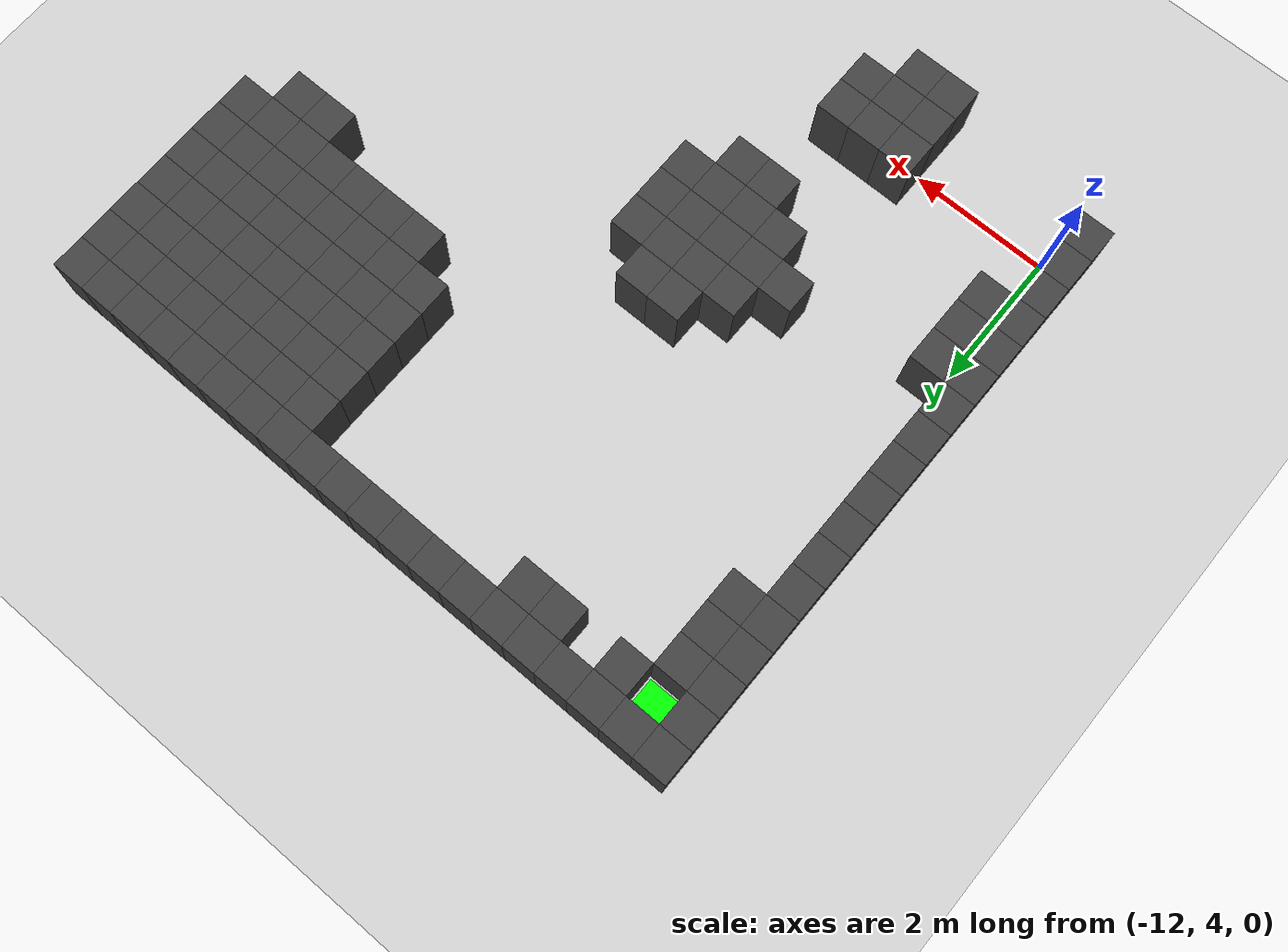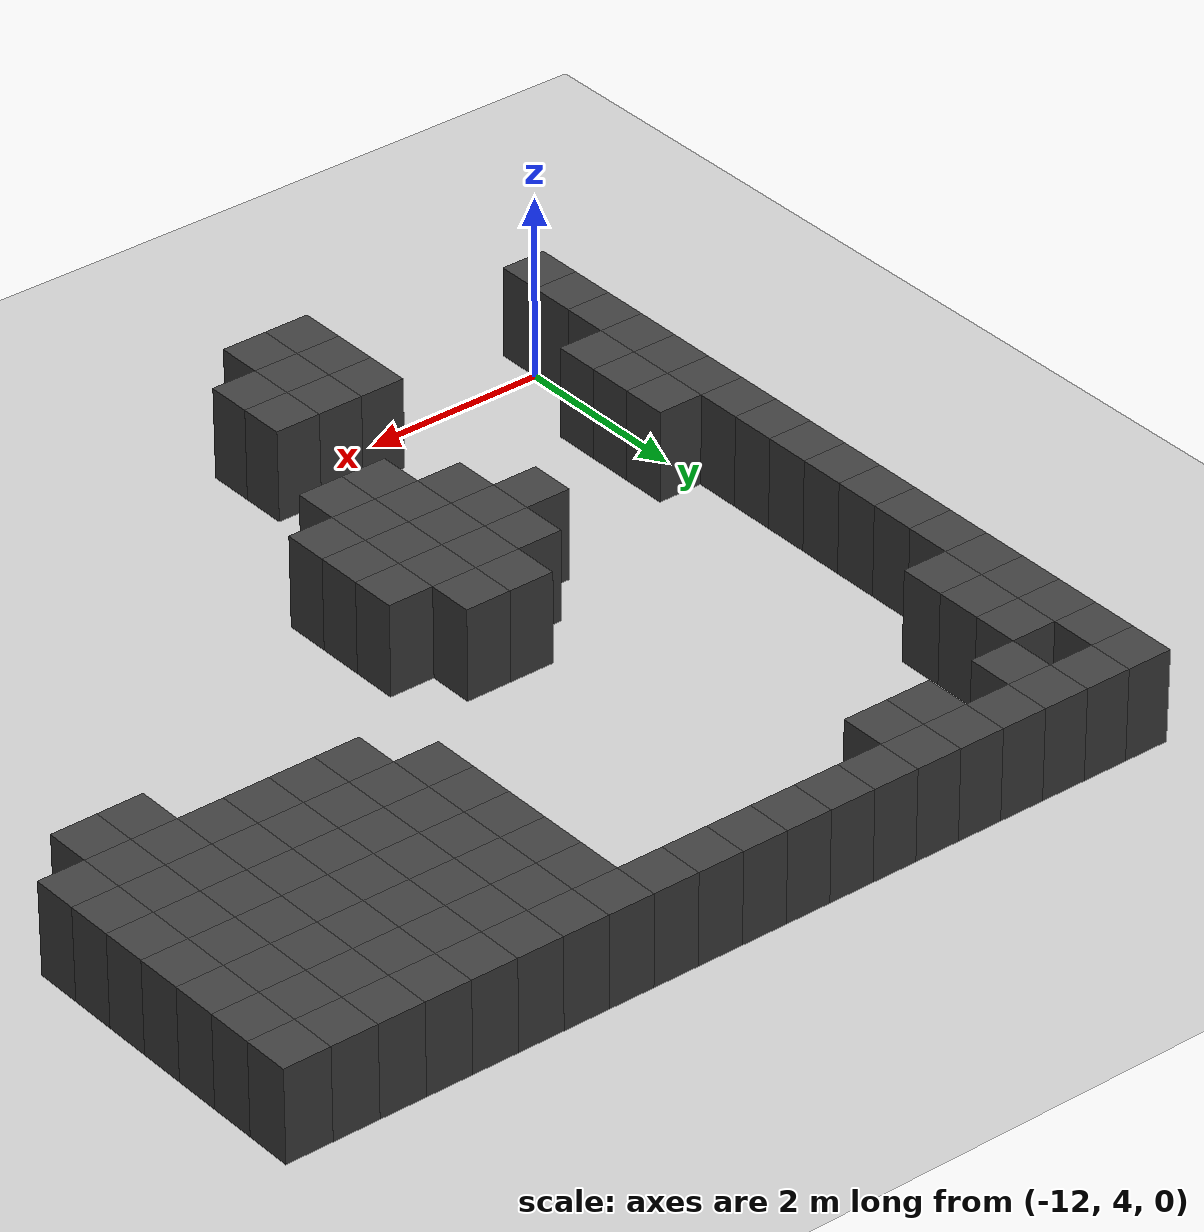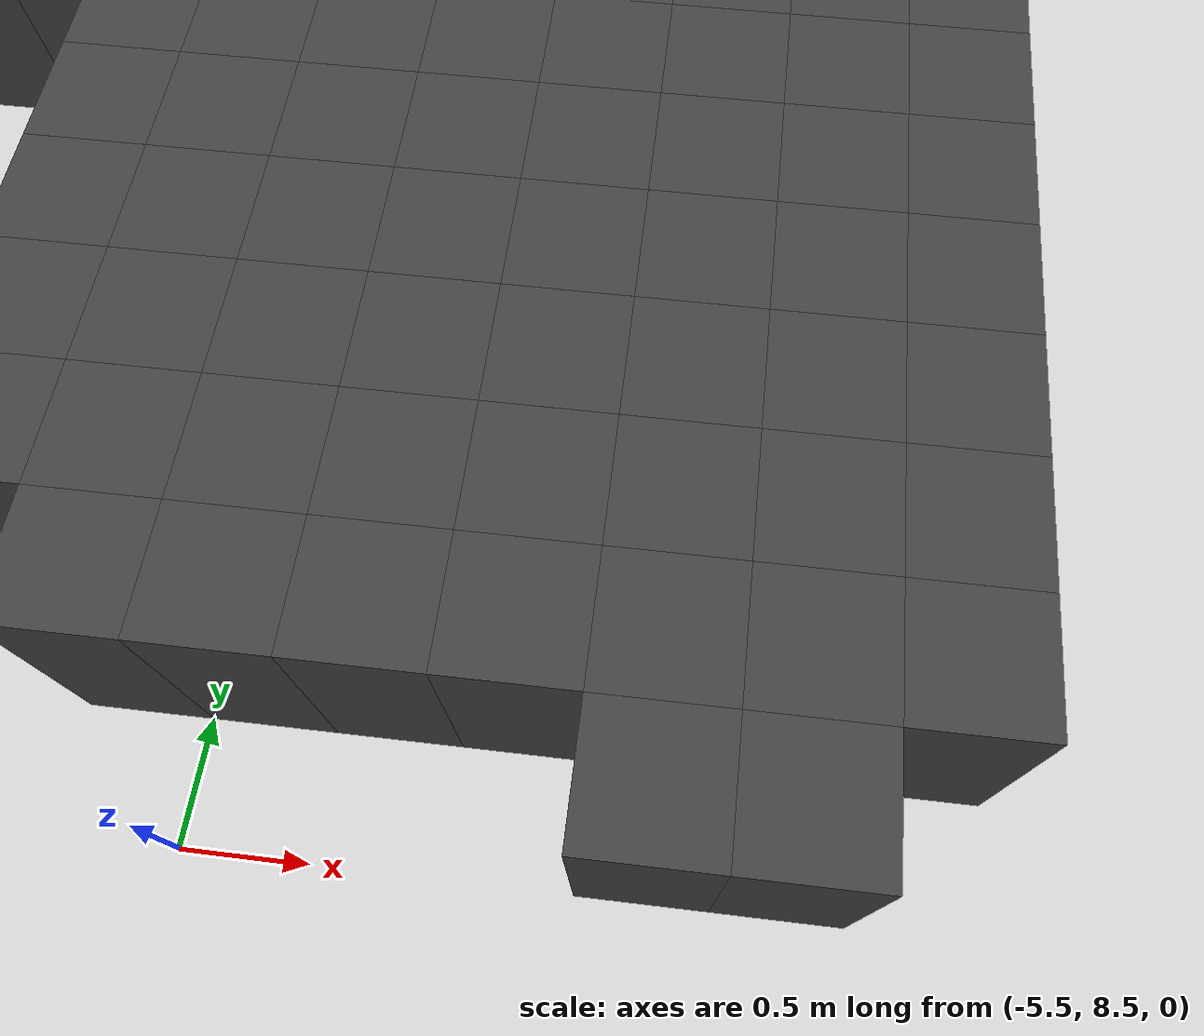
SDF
<sdf version="1.7">
 <world name="map_9381">
  <model name="ground_plane">
   <static>true</static>
   <link name="link">
    <collision name="collision">
     <geometry><plane><normal>0 0 1</normal><size>200 200</size></plane></geometry>
    </collision>
    <visual name="visual">
     <geometry><plane><normal>0 0 1</normal><size>200 200</size></plane></geometry>
     <material><ambient>0.8 0.8 0.8 1</ambient><diffuse>0.8 0.8 0.8 1</diffuse></material>
    </visual>
   </link>
  </model>
  <model name="maze_environment">
   <static>true</static>
   <link name="wall_0">
    <pose>-12.250 12.250 0.500 0 0 0</pose>
    <collision name="col"><geometry><box><size>0.5 0.5 1.0</size></box></geometry></collision>
    <visual name="vis">
     <geometry><box><size>0.5 0.5 1.0</size></box></geometry>
     <material><ambient>0.15 0.15 0.15 1</ambient><diffuse>0.25 0.25 0.25 1</diffuse></material>
    </visual>
   </link>
   <link name="wall_1">
    <pose>-11.750 12.250 0.500 0 0 0</pose>
    <collision name="col"><geometry><box><size>0.5 0.5 1.0</size></box></geometry></collision>
    <visual name="vis">
     <geometry><box><size>0.5 0.5 1.0</size></box></geometry>
     <material><ambient>0.15 0.15 0.15 1</ambient><diffuse>0.25 0.25 0.25 1</diffuse></material>
    </visual>
   </link>
   <link name="wall_2">
    <pose>-11.250 12.250 0.500 0 0 0</pose>
    <collision name="col"><geometry><box><size>0.5 0.5 1.0</size></box></geometry></collision>
    <visual name="vis">
     <geometry><box><size>0.5 0.5 1.0</size></box></geometry>
     <material><ambient>0.15 0.15 0.15 1</ambient><diffuse>0.25 0.25 0.25 1</diffuse></material>
    </visual>
   </link>
   <link name="wall_3">
    <pose>-10.750 12.250 0.500 0 0 0</pose>
    <collision name="col"><geometry><box><size>0.5 0.5 1.0</size></box></geometry></collision>
    <visual name="vis">
     <geometry><box><size>0.5 0.5 1.0</size></box></geometry>
     <material><ambient>0.15 0.15 0.15 1</ambient><diffuse>0.25 0.25 0.25 1</diffuse></material>
    </visual>
   </link>
   <link name="wall_4">
    <pose>-10.250 12.250 0.500 0 0 0</pose>
    <collision name="col"><geometry><box><size>0.5 0.5 1.0</size></box></geometry></collision>
    <visual name="vis">
     <geometry><box><size>0.5 0.5 1.0</size></box></geometry>
     <material><ambient>0.15 0.15 0.15 1</ambient><diffuse>0.25 0.25 0.25 1</diffuse></material>
    </visual>
   </link>
   <link name="wall_5">
    <pose>-9.750 12.250 0.500 0 0 0</pose>
    <collision name="col"><geometry><box><size>0.5 0.5 1.0</size></box></geometry></collision>
    <visual name="vis">
     <geometry><box><size>0.5 0.5 1.0</size></box></geometry>
     <material><ambient>0.15 0.15 0.15 1</ambient><diffuse>0.25 0.25 0.25 1</diffuse></material>
    </visual>
   </link>
   <link name="wall_6">
    <pose>-9.250 12.250 0.500 0 0 0</pose>
    <collision name="col"><geometry><box><size>0.5 0.5 1.0</size></box></geometry></collision>
    <visual name="vis">
     <geometry><box><size>0.5 0.5 1.0</size></box></geometry>
     <material><ambient>0.15 0.15 0.15 1</ambient><diffuse>0.25 0.25 0.25 1</diffuse></material>
    </visual>
   </link>
   <link name="wall_7">
    <pose>-8.750 12.250 0.500 0 0 0</pose>
    <collision name="col"><geometry><box><size>0.5 0.5 1.0</size></box></geometry></collision>
    <visual name="vis">
     <geometry><box><size>0.5 0.5 1.0</size></box></geometry>
     <material><ambient>0.15 0.15 0.15 1</ambient><diffuse>0.25 0.25 0.25 1</diffuse></material>
    </visual>
   </link>
   <link name="wall_8">
    <pose>-8.250 12.250 0.500 0 0 0</pose>
    <collision name="col"><geometry><box><size>0.5 0.5 1.0</size></box></geometry></collision>
    <visual name="vis">
     <geometry><box><size>0.5 0.5 1.0</size></box></geometry>
     <material><ambient>0.15 0.15 0.15 1</ambient><diffuse>0.25 0.25 0.25 1</diffuse></material>
    </visual>
   </link>
   <link name="wall_9">
    <pose>-7.750 12.250 0.500 0 0 0</pose>
    <collision name="col"><geometry><box><size>0.5 0.5 1.0</size></box></geometry></collision>
    <visual name="vis">
     <geometry><box><size>0.5 0.5 1.0</size></box></geometry>
     <material><ambient>0.15 0.15 0.15 1</ambient><diffuse>0.25 0.25 0.25 1</diffuse></material>
    </visual>
   </link>
   <link name="wall_10">
    <pose>-7.250 12.250 0.500 0 0 0</pose>
    <collision name="col"><geometry><box><size>0.5 0.5 1.0</size></box></geometry></collision>
    <visual name="vis">
     <geometry><box><size>0.5 0.5 1.0</size></box></geometry>
     <material><ambient>0.15 0.15 0.15 1</ambient><diffuse>0.25 0.25 0.25 1</diffuse></material>
    </visual>
   </link>
   <link name="wall_11">
    <pose>-6.750 12.250 0.500 0 0 0</pose>
    <collision name="col"><geometry><box><size>0.5 0.5 1.0</size></box></geometry></collision>
    <visual name="vis">
     <geometry><box><size>0.5 0.5 1.0</size></box></geometry>
     <material><ambient>0.15 0.15 0.15 1</ambient><diffuse>0.25 0.25 0.25 1</diffuse></material>
    </visual>
   </link>
   <link name="wall_12">
    <pose>-6.250 12.250 0.500 0 0 0</pose>
    <collision name="col"><geometry><box><size>0.5 0.5 1.0</size></box></geometry></collision>
    <visual name="vis">
     <geometry><box><size>0.5 0.5 1.0</size></box></geometry>
     <material><ambient>0.15 0.15 0.15 1</ambient><diffuse>0.25 0.25 0.25 1</diffuse></material>
    </visual>
   </link>
   <link name="wall_13">
    <pose>-5.750 12.250 0.500 0 0 0</pose>
    <collision name="col"><geometry><box><size>0.5 0.5 1.0</size></box></geometry></collision>
    <visual name="vis">
     <geometry><box><size>0.5 0.5 1.0</size></box></geometry>
     <material><ambient>0.15 0.15 0.15 1</ambient><diffuse>0.25 0.25 0.25 1</diffuse></material>
    </visual>
   </link>
   <link name="wall_14">
    <pose>-5.250 12.250 0.500 0 0 0</pose>
    <collision name="col"><geometry><box><size>0.5 0.5 1.0</size></box></geometry></collision>
    <visual name="vis">
     <geometry><box><size>0.5 0.5 1.0</size></box></geometry>
     <material><ambient>0.15 0.15 0.15 1</ambient><diffuse>0.25 0.25 0.25 1</diffuse></material>
    </visual>
   </link>
   <link name="wall_15">
    <pose>-4.750 12.250 0.500 0 0 0</pose>
    <collision name="col"><geometry><box><size>0.5 0.5 1.0</size></box></geometry></collision>
    <visual name="vis">
     <geometry><box><size>0.5 0.5 1.0</size></box></geometry>
     <material><ambient>0.15 0.15 0.15 1</ambient><diffuse>0.25 0.25 0.25 1</diffuse></material>
    </visual>
   </link>
   <link name="wall_16">
    <pose>-4.250 12.250 0.500 0 0 0</pose>
    <collision name="col"><geometry><box><size>0.5 0.5 1.0</size></box></geometry></collision>
    <visual name="vis">
     <geometry><box><size>0.5 0.5 1.0</size></box></geometry>
     <material><ambient>0.15 0.15 0.15 1</ambient><diffuse>0.25 0.25 0.25 1</diffuse></material>
    </visual>
   </link>
   <link name="wall_17">
    <pose>-3.750 12.250 0.500 0 0 0</pose>
    <collision name="col"><geometry><box><size>0.5 0.5 1.0</size></box></geometry></collision>
    <visual name="vis">
     <geometry><box><size>0.5 0.5 1.0</size></box></geometry>
     <material><ambient>0.15 0.15 0.15 1</ambient><diffuse>0.25 0.25 0.25 1</diffuse></material>
    </visual>
   </link>
   <link name="wall_18">
    <pose>-3.250 12.250 0.500 0 0 0</pose>
    <collision name="col"><geometry><box><size>0.5 0.5 1.0</size></box></geometry></collision>
    <visual name="vis">
     <geometry><box><size>0.5 0.5 1.0</size></box></geometry>
     <material><ambient>0.15 0.15 0.15 1</ambient><diffuse>0.25 0.25 0.25 1</diffuse></material>
    </visual>
   </link>
   <link name="wall_19">
    <pose>-2.750 12.250 0.500 0 0 0</pose>
    <collision name="col"><geometry><box><size>0.5 0.5 1.0</size></box></geometry></collision>
    <visual name="vis">
     <geometry><box><size>0.5 0.5 1.0</size></box></geometry>
     <material><ambient>0.15 0.15 0.15 1</ambient><diffuse>0.25 0.25 0.25 1</diffuse></material>
    </visual>
   </link>
   <link name="wall_50">
    <pose>-12.250 11.750 0.500 0 0 0</pose>
    <collision name="col"><geometry><box><size>0.5 0.5 1.0</size></box></geometry></collision>
    <visual name="vis">
     <geometry><box><size>0.5 0.5 1.0</size></box></geometry>
     <material><ambient>0.15 0.15 0.15 1</ambient><diffuse>0.25 0.25 0.25 1</diffuse></material>
    </visual>
   </link>
   <link name="wall_51">
    <pose>-11.250 11.750 0.500 0 0 0</pose>
    <collision name="col"><geometry><box><size>0.5 0.5 1.0</size></box></geometry></collision>
    <visual name="vis">
     <geometry><box><size>0.5 0.5 1.0</size></box></geometry>
     <material><ambient>0.15 0.15 0.15 1</ambient><diffuse>0.25 0.25 0.25 1</diffuse></material>
    </visual>
   </link>
   <link name="wall_52">
    <pose>-10.250 11.750 0.500 0 0 0</pose>
    <collision name="col"><geometry><box><size>0.5 0.5 1.0</size></box></geometry></collision>
    <visual name="vis">
     <geometry><box><size>0.5 0.5 1.0</size></box></geometry>
     <material><ambient>0.15 0.15 0.15 1</ambient><diffuse>0.25 0.25 0.25 1</diffuse></material>
    </visual>
   </link>
   <link name="wall_53">
    <pose>-9.750 11.750 0.500 0 0 0</pose>
    <collision name="col"><geometry><box><size>0.5 0.5 1.0</size></box></geometry></collision>
    <visual name="vis">
     <geometry><box><size>0.5 0.5 1.0</size></box></geometry>
     <material><ambient>0.15 0.15 0.15 1</ambient><diffuse>0.25 0.25 0.25 1</diffuse></material>
    </visual>
   </link>
   <link name="wall_54">
    <pose>-6.250 11.750 0.500 0 0 0</pose>
    <collision name="col"><geometry><box><size>0.5 0.5 1.0</size></box></geometry></collision>
    <visual name="vis">
     <geometry><box><size>0.5 0.5 1.0</size></box></geometry>
     <material><ambient>0.15 0.15 0.15 1</ambient><diffuse>0.25 0.25 0.25 1</diffuse></material>
    </visual>
   </link>
   <link name="wall_55">
    <pose>-5.750 11.750 0.500 0 0 0</pose>
    <collision name="col"><geometry><box><size>0.5 0.5 1.0</size></box></geometry></collision>
    <visual name="vis">
     <geometry><box><size>0.5 0.5 1.0</size></box></geometry>
     <material><ambient>0.15 0.15 0.15 1</ambient><diffuse>0.25 0.25 0.25 1</diffuse></material>
    </visual>
   </link>
   <link name="wall_56">
    <pose>-5.250 11.750 0.500 0 0 0</pose>
    <collision name="col"><geometry><box><size>0.5 0.5 1.0</size></box></geometry></collision>
    <visual name="vis">
     <geometry><box><size>0.5 0.5 1.0</size></box></geometry>
     <material><ambient>0.15 0.15 0.15 1</ambient><diffuse>0.25 0.25 0.25 1</diffuse></material>
    </visual>
   </link>
   <link name="wall_57">
    <pose>-4.750 11.750 0.500 0 0 0</pose>
    <collision name="col"><geometry><box><size>0.5 0.5 1.0</size></box></geometry></collision>
    <visual name="vis">
     <geometry><box><size>0.5 0.5 1.0</size></box></geometry>
     <material><ambient>0.15 0.15 0.15 1</ambient><diffuse>0.25 0.25 0.25 1</diffuse></material>
    </visual>
   </link>
   <link name="wall_58">
    <pose>-4.250 11.750 0.500 0 0 0</pose>
    <collision name="col"><geometry><box><size>0.5 0.5 1.0</size></box></geometry></collision>
    <visual name="vis">
     <geometry><box><size>0.5 0.5 1.0</size></box></geometry>
     <material><ambient>0.15 0.15 0.15 1</ambient><diffuse>0.25 0.25 0.25 1</diffuse></material>
    </visual>
   </link>
   <link name="wall_59">
    <pose>-3.750 11.750 0.500 0 0 0</pose>
    <collision name="col"><geometry><box><size>0.5 0.5 1.0</size></box></geometry></collision>
    <visual name="vis">
     <geometry><box><size>0.5 0.5 1.0</size></box></geometry>
     <material><ambient>0.15 0.15 0.15 1</ambient><diffuse>0.25 0.25 0.25 1</diffuse></material>
    </visual>
   </link>
   <link name="wall_60">
    <pose>-3.250 11.750 0.500 0 0 0</pose>
    <collision name="col"><geometry><box><size>0.5 0.5 1.0</size></box></geometry></collision>
    <visual name="vis">
     <geometry><box><size>0.5 0.5 1.0</size></box></geometry>
     <material><ambient>0.15 0.15 0.15 1</ambient><diffuse>0.25 0.25 0.25 1</diffuse></material>
    </visual>
   </link>
   <link name="wall_61">
    <pose>-2.750 11.750 0.500 0 0 0</pose>
    <collision name="col"><geometry><box><size>0.5 0.5 1.0</size></box></geometry></collision>
    <visual name="vis">
     <geometry><box><size>0.5 0.5 1.0</size></box></geometry>
     <material><ambient>0.15 0.15 0.15 1</ambient><diffuse>0.25 0.25 0.25 1</diffuse></material>
    </visual>
   </link>
   <link name="wall_85">
    <pose>-12.250 11.250 0.500 0 0 0</pose>
    <collision name="col"><geometry><box><size>0.5 0.5 1.0</size></box></geometry></collision>
    <visual name="vis">
     <geometry><box><size>0.5 0.5 1.0</size></box></geometry>
     <material><ambient>0.15 0.15 0.15 1</ambient><diffuse>0.25 0.25 0.25 1</diffuse></material>
    </visual>
   </link>
   <link name="wall_86">
    <pose>-11.750 11.250 0.500 0 0 0</pose>
    <collision name="col"><geometry><box><size>0.5 0.5 1.0</size></box></geometry></collision>
    <visual name="vis">
     <geometry><box><size>0.5 0.5 1.0</size></box></geometry>
     <material><ambient>0.15 0.15 0.15 1</ambient><diffuse>0.25 0.25 0.25 1</diffuse></material>
    </visual>
   </link>
   <link name="wall_87">
    <pose>-6.250 11.250 0.500 0 0 0</pose>
    <collision name="col"><geometry><box><size>0.5 0.5 1.0</size></box></geometry></collision>
    <visual name="vis">
     <geometry><box><size>0.5 0.5 1.0</size></box></geometry>
     <material><ambient>0.15 0.15 0.15 1</ambient><diffuse>0.25 0.25 0.25 1</diffuse></material>
    </visual>
   </link>
   <link name="wall_88">
    <pose>-5.750 11.250 0.500 0 0 0</pose>
    <collision name="col"><geometry><box><size>0.5 0.5 1.0</size></box></geometry></collision>
    <visual name="vis">
     <geometry><box><size>0.5 0.5 1.0</size></box></geometry>
     <material><ambient>0.15 0.15 0.15 1</ambient><diffuse>0.25 0.25 0.25 1</diffuse></material>
    </visual>
   </link>
   <link name="wall_89">
    <pose>-5.250 11.250 0.500 0 0 0</pose>
    <collision name="col"><geometry><box><size>0.5 0.5 1.0</size></box></geometry></collision>
    <visual name="vis">
     <geometry><box><size>0.5 0.5 1.0</size></box></geometry>
     <material><ambient>0.15 0.15 0.15 1</ambient><diffuse>0.25 0.25 0.25 1</diffuse></material>
    </visual>
   </link>
   <link name="wall_90">
    <pose>-4.750 11.250 0.500 0 0 0</pose>
    <collision name="col"><geometry><box><size>0.5 0.5 1.0</size></box></geometry></collision>
    <visual name="vis">
     <geometry><box><size>0.5 0.5 1.0</size></box></geometry>
     <material><ambient>0.15 0.15 0.15 1</ambient><diffuse>0.25 0.25 0.25 1</diffuse></material>
    </visual>
   </link>
   <link name="wall_91">
    <pose>-4.250 11.250 0.500 0 0 0</pose>
    <collision name="col"><geometry><box><size>0.5 0.5 1.0</size></box></geometry></collision>
    <visual name="vis">
     <geometry><box><size>0.5 0.5 1.0</size></box></geometry>
     <material><ambient>0.15 0.15 0.15 1</ambient><diffuse>0.25 0.25 0.25 1</diffuse></material>
    </visual>
   </link>
   <link name="wall_92">
    <pose>-3.750 11.250 0.500 0 0 0</pose>
    <collision name="col"><geometry><box><size>0.5 0.5 1.0</size></box></geometry></collision>
    <visual name="vis">
     <geometry><box><size>0.5 0.5 1.0</size></box></geometry>
     <material><ambient>0.15 0.15 0.15 1</ambient><diffuse>0.25 0.25 0.25 1</diffuse></material>
    </visual>
   </link>
   <link name="wall_93">
    <pose>-3.250 11.250 0.500 0 0 0</pose>
    <collision name="col"><geometry><box><size>0.5 0.5 1.0</size></box></geometry></collision>
    <visual name="vis">
     <geometry><box><size>0.5 0.5 1.0</size></box></geometry>
     <material><ambient>0.15 0.15 0.15 1</ambient><diffuse>0.25 0.25 0.25 1</diffuse></material>
    </visual>
   </link>
   <link name="wall_94">
    <pose>-2.750 11.250 0.500 0 0 0</pose>
    <collision name="col"><geometry><box><size>0.5 0.5 1.0</size></box></geometry></collision>
    <visual name="vis">
     <geometry><box><size>0.5 0.5 1.0</size></box></geometry>
     <material><ambient>0.15 0.15 0.15 1</ambient><diffuse>0.25 0.25 0.25 1</diffuse></material>
    </visual>
   </link>
   <link name="wall_115">
    <pose>-12.250 10.750 0.500 0 0 0</pose>
    <collision name="col"><geometry><box><size>0.5 0.5 1.0</size></box></geometry></collision>
    <visual name="vis">
     <geometry><box><size>0.5 0.5 1.0</size></box></geometry>
     <material><ambient>0.15 0.15 0.15 1</ambient><diffuse>0.25 0.25 0.25 1</diffuse></material>
    </visual>
   </link>
   <link name="wall_116">
    <pose>-11.750 10.750 0.500 0 0 0</pose>
    <collision name="col"><geometry><box><size>0.5 0.5 1.0</size></box></geometry></collision>
    <visual name="vis">
     <geometry><box><size>0.5 0.5 1.0</size></box></geometry>
     <material><ambient>0.15 0.15 0.15 1</ambient><diffuse>0.25 0.25 0.25 1</diffuse></material>
    </visual>
   </link>
   <link name="wall_117">
    <pose>-6.250 10.750 0.500 0 0 0</pose>
    <collision name="col"><geometry><box><size>0.5 0.5 1.0</size></box></geometry></collision>
    <visual name="vis">
     <geometry><box><size>0.5 0.5 1.0</size></box></geometry>
     <material><ambient>0.15 0.15 0.15 1</ambient><diffuse>0.25 0.25 0.25 1</diffuse></material>
    </visual>
   </link>
   <link name="wall_118">
    <pose>-5.750 10.750 0.500 0 0 0</pose>
    <collision name="col"><geometry><box><size>0.5 0.5 1.0</size></box></geometry></collision>
    <visual name="vis">
     <geometry><box><size>0.5 0.5 1.0</size></box></geometry>
     <material><ambient>0.15 0.15 0.15 1</ambient><diffuse>0.25 0.25 0.25 1</diffuse></material>
    </visual>
   </link>
   <link name="wall_119">
    <pose>-5.250 10.750 0.500 0 0 0</pose>
    <collision name="col"><geometry><box><size>0.5 0.5 1.0</size></box></geometry></collision>
    <visual name="vis">
     <geometry><box><size>0.5 0.5 1.0</size></box></geometry>
     <material><ambient>0.15 0.15 0.15 1</ambient><diffuse>0.25 0.25 0.25 1</diffuse></material>
    </visual>
   </link>
   <link name="wall_120">
    <pose>-4.750 10.750 0.500 0 0 0</pose>
    <collision name="col"><geometry><box><size>0.5 0.5 1.0</size></box></geometry></collision>
    <visual name="vis">
     <geometry><box><size>0.5 0.5 1.0</size></box></geometry>
     <material><ambient>0.15 0.15 0.15 1</ambient><diffuse>0.25 0.25 0.25 1</diffuse></material>
    </visual>
   </link>
   <link name="wall_121">
    <pose>-4.250 10.750 0.500 0 0 0</pose>
    <collision name="col"><geometry><box><size>0.5 0.5 1.0</size></box></geometry></collision>
    <visual name="vis">
     <geometry><box><size>0.5 0.5 1.0</size></box></geometry>
     <material><ambient>0.15 0.15 0.15 1</ambient><diffuse>0.25 0.25 0.25 1</diffuse></material>
    </visual>
   </link>
   <link name="wall_122">
    <pose>-3.750 10.750 0.500 0 0 0</pose>
    <collision name="col"><geometry><box><size>0.5 0.5 1.0</size></box></geometry></collision>
    <visual name="vis">
     <geometry><box><size>0.5 0.5 1.0</size></box></geometry>
     <material><ambient>0.15 0.15 0.15 1</ambient><diffuse>0.25 0.25 0.25 1</diffuse></material>
    </visual>
   </link>
   <link name="wall_123">
    <pose>-3.250 10.750 0.500 0 0 0</pose>
    <collision name="col"><geometry><box><size>0.5 0.5 1.0</size></box></geometry></collision>
    <visual name="vis">
     <geometry><box><size>0.5 0.5 1.0</size></box></geometry>
     <material><ambient>0.15 0.15 0.15 1</ambient><diffuse>0.25 0.25 0.25 1</diffuse></material>
    </visual>
   </link>
   <link name="wall_124">
    <pose>-2.750 10.750 0.500 0 0 0</pose>
    <collision name="col"><geometry><box><size>0.5 0.5 1.0</size></box></geometry></collision>
    <visual name="vis">
     <geometry><box><size>0.5 0.5 1.0</size></box></geometry>
     <material><ambient>0.15 0.15 0.15 1</ambient><diffuse>0.25 0.25 0.25 1</diffuse></material>
    </visual>
   </link>
   <link name="wall_141">
    <pose>-12.250 10.250 0.500 0 0 0</pose>
    <collision name="col"><geometry><box><size>0.5 0.5 1.0</size></box></geometry></collision>
    <visual name="vis">
     <geometry><box><size>0.5 0.5 1.0</size></box></geometry>
     <material><ambient>0.15 0.15 0.15 1</ambient><diffuse>0.25 0.25 0.25 1</diffuse></material>
    </visual>
   </link>
   <link name="wall_142">
    <pose>-11.750 10.250 0.500 0 0 0</pose>
    <collision name="col"><geometry><box><size>0.5 0.5 1.0</size></box></geometry></collision>
    <visual name="vis">
     <geometry><box><size>0.5 0.5 1.0</size></box></geometry>
     <material><ambient>0.15 0.15 0.15 1</ambient><diffuse>0.25 0.25 0.25 1</diffuse></material>
    </visual>
   </link>
   <link name="wall_143">
    <pose>-6.250 10.250 0.500 0 0 0</pose>
    <collision name="col"><geometry><box><size>0.5 0.5 1.0</size></box></geometry></collision>
    <visual name="vis">
     <geometry><box><size>0.5 0.5 1.0</size></box></geometry>
     <material><ambient>0.15 0.15 0.15 1</ambient><diffuse>0.25 0.25 0.25 1</diffuse></material>
    </visual>
   </link>
   <link name="wall_144">
    <pose>-5.750 10.250 0.500 0 0 0</pose>
    <collision name="col"><geometry><box><size>0.5 0.5 1.0</size></box></geometry></collision>
    <visual name="vis">
     <geometry><box><size>0.5 0.5 1.0</size></box></geometry>
     <material><ambient>0.15 0.15 0.15 1</ambient><diffuse>0.25 0.25 0.25 1</diffuse></material>
    </visual>
   </link>
   <link name="wall_145">
    <pose>-5.250 10.250 0.500 0 0 0</pose>
    <collision name="col"><geometry><box><size>0.5 0.5 1.0</size></box></geometry></collision>
    <visual name="vis">
     <geometry><box><size>0.5 0.5 1.0</size></box></geometry>
     <material><ambient>0.15 0.15 0.15 1</ambient><diffuse>0.25 0.25 0.25 1</diffuse></material>
    </visual>
   </link>
   <link name="wall_146">
    <pose>-4.750 10.250 0.500 0 0 0</pose>
    <collision name="col"><geometry><box><size>0.5 0.5 1.0</size></box></geometry></collision>
    <visual name="vis">
     <geometry><box><size>0.5 0.5 1.0</size></box></geometry>
     <material><ambient>0.15 0.15 0.15 1</ambient><diffuse>0.25 0.25 0.25 1</diffuse></material>
    </visual>
   </link>
   <link name="wall_147">
    <pose>-4.250 10.250 0.500 0 0 0</pose>
    <collision name="col"><geometry><box><size>0.5 0.5 1.0</size></box></geometry></collision>
    <visual name="vis">
     <geometry><box><size>0.5 0.5 1.0</size></box></geometry>
     <material><ambient>0.15 0.15 0.15 1</ambient><diffuse>0.25 0.25 0.25 1</diffuse></material>
    </visual>
   </link>
   <link name="wall_148">
    <pose>-3.750 10.250 0.500 0 0 0</pose>
    <collision name="col"><geometry><box><size>0.5 0.5 1.0</size></box></geometry></collision>
    <visual name="vis">
     <geometry><box><size>0.5 0.5 1.0</size></box></geometry>
     <material><ambient>0.15 0.15 0.15 1</ambient><diffuse>0.25 0.25 0.25 1</diffuse></material>
    </visual>
   </link>
   <link name="wall_149">
    <pose>-3.250 10.250 0.500 0 0 0</pose>
    <collision name="col"><geometry><box><size>0.5 0.5 1.0</size></box></geometry></collision>
    <visual name="vis">
     <geometry><box><size>0.5 0.5 1.0</size></box></geometry>
     <material><ambient>0.15 0.15 0.15 1</ambient><diffuse>0.25 0.25 0.25 1</diffuse></material>
    </visual>
   </link>
   <link name="wall_150">
    <pose>-2.750 10.250 0.500 0 0 0</pose>
    <collision name="col"><geometry><box><size>0.5 0.5 1.0</size></box></geometry></collision>
    <visual name="vis">
     <geometry><box><size>0.5 0.5 1.0</size></box></geometry>
     <material><ambient>0.15 0.15 0.15 1</ambient><diffuse>0.25 0.25 0.25 1</diffuse></material>
    </visual>
   </link>
   <link name="wall_165">
    <pose>-12.250 9.750 0.500 0 0 0</pose>
    <collision name="col"><geometry><box><size>0.5 0.5 1.0</size></box></geometry></collision>
    <visual name="vis">
     <geometry><box><size>0.5 0.5 1.0</size></box></geometry>
     <material><ambient>0.15 0.15 0.15 1</ambient><diffuse>0.25 0.25 0.25 1</diffuse></material>
    </visual>
   </link>
   <link name="wall_166">
    <pose>-6.250 9.750 0.500 0 0 0</pose>
    <collision name="col"><geometry><box><size>0.5 0.5 1.0</size></box></geometry></collision>
    <visual name="vis">
     <geometry><box><size>0.5 0.5 1.0</size></box></geometry>
     <material><ambient>0.15 0.15 0.15 1</ambient><diffuse>0.25 0.25 0.25 1</diffuse></material>
    </visual>
   </link>
   <link name="wall_167">
    <pose>-5.750 9.750 0.500 0 0 0</pose>
    <collision name="col"><geometry><box><size>0.5 0.5 1.0</size></box></geometry></collision>
    <visual name="vis">
     <geometry><box><size>0.5 0.5 1.0</size></box></geometry>
     <material><ambient>0.15 0.15 0.15 1</ambient><diffuse>0.25 0.25 0.25 1</diffuse></material>
    </visual>
   </link>
   <link name="wall_168">
    <pose>-5.250 9.750 0.500 0 0 0</pose>
    <collision name="col"><geometry><box><size>0.5 0.5 1.0</size></box></geometry></collision>
    <visual name="vis">
     <geometry><box><size>0.5 0.5 1.0</size></box></geometry>
     <material><ambient>0.15 0.15 0.15 1</ambient><diffuse>0.25 0.25 0.25 1</diffuse></material>
    </visual>
   </link>
   <link name="wall_169">
    <pose>-4.750 9.750 0.500 0 0 0</pose>
    <collision name="col"><geometry><box><size>0.5 0.5 1.0</size></box></geometry></collision>
    <visual name="vis">
     <geometry><box><size>0.5 0.5 1.0</size></box></geometry>
     <material><ambient>0.15 0.15 0.15 1</ambient><diffuse>0.25 0.25 0.25 1</diffuse></material>
    </visual>
   </link>
   <link name="wall_170">
    <pose>-4.250 9.750 0.500 0 0 0</pose>
    <collision name="col"><geometry><box><size>0.5 0.5 1.0</size></box></geometry></collision>
    <visual name="vis">
     <geometry><box><size>0.5 0.5 1.0</size></box></geometry>
     <material><ambient>0.15 0.15 0.15 1</ambient><diffuse>0.25 0.25 0.25 1</diffuse></material>
    </visual>
   </link>
   <link name="wall_171">
    <pose>-3.750 9.750 0.500 0 0 0</pose>
    <collision name="col"><geometry><box><size>0.5 0.5 1.0</size></box></geometry></collision>
    <visual name="vis">
     <geometry><box><size>0.5 0.5 1.0</size></box></geometry>
     <material><ambient>0.15 0.15 0.15 1</ambient><diffuse>0.25 0.25 0.25 1</diffuse></material>
    </visual>
   </link>
   <link name="wall_172">
    <pose>-3.250 9.750 0.500 0 0 0</pose>
    <collision name="col"><geometry><box><size>0.5 0.5 1.0</size></box></geometry></collision>
    <visual name="vis">
     <geometry><box><size>0.5 0.5 1.0</size></box></geometry>
     <material><ambient>0.15 0.15 0.15 1</ambient><diffuse>0.25 0.25 0.25 1</diffuse></material>
    </visual>
   </link>
   <link name="wall_173">
    <pose>-2.750 9.750 0.500 0 0 0</pose>
    <collision name="col"><geometry><box><size>0.5 0.5 1.0</size></box></geometry></collision>
    <visual name="vis">
     <geometry><box><size>0.5 0.5 1.0</size></box></geometry>
     <material><ambient>0.15 0.15 0.15 1</ambient><diffuse>0.25 0.25 0.25 1</diffuse></material>
    </visual>
   </link>
   <link name="wall_182">
    <pose>-12.250 9.250 0.500 0 0 0</pose>
    <collision name="col"><geometry><box><size>0.5 0.5 1.0</size></box></geometry></collision>
    <visual name="vis">
     <geometry><box><size>0.5 0.5 1.0</size></box></geometry>
     <material><ambient>0.15 0.15 0.15 1</ambient><diffuse>0.25 0.25 0.25 1</diffuse></material>
    </visual>
   </link>
   <link name="wall_183">
    <pose>-5.750 9.250 0.500 0 0 0</pose>
    <collision name="col"><geometry><box><size>0.5 0.5 1.0</size></box></geometry></collision>
    <visual name="vis">
     <geometry><box><size>0.5 0.5 1.0</size></box></geometry>
     <material><ambient>0.15 0.15 0.15 1</ambient><diffuse>0.25 0.25 0.25 1</diffuse></material>
    </visual>
   </link>
   <link name="wall_184">
    <pose>-5.250 9.250 0.500 0 0 0</pose>
    <collision name="col"><geometry><box><size>0.5 0.5 1.0</size></box></geometry></collision>
    <visual name="vis">
     <geometry><box><size>0.5 0.5 1.0</size></box></geometry>
     <material><ambient>0.15 0.15 0.15 1</ambient><diffuse>0.25 0.25 0.25 1</diffuse></material>
    </visual>
   </link>
   <link name="wall_185">
    <pose>-4.750 9.250 0.500 0 0 0</pose>
    <collision name="col"><geometry><box><size>0.5 0.5 1.0</size></box></geometry></collision>
    <visual name="vis">
     <geometry><box><size>0.5 0.5 1.0</size></box></geometry>
     <material><ambient>0.15 0.15 0.15 1</ambient><diffuse>0.25 0.25 0.25 1</diffuse></material>
    </visual>
   </link>
   <link name="wall_186">
    <pose>-4.250 9.250 0.500 0 0 0</pose>
    <collision name="col"><geometry><box><size>0.5 0.5 1.0</size></box></geometry></collision>
    <visual name="vis">
     <geometry><box><size>0.5 0.5 1.0</size></box></geometry>
     <material><ambient>0.15 0.15 0.15 1</ambient><diffuse>0.25 0.25 0.25 1</diffuse></material>
    </visual>
   </link>
   <link name="wall_187">
    <pose>-3.750 9.250 0.500 0 0 0</pose>
    <collision name="col"><geometry><box><size>0.5 0.5 1.0</size></box></geometry></collision>
    <visual name="vis">
     <geometry><box><size>0.5 0.5 1.0</size></box></geometry>
     <material><ambient>0.15 0.15 0.15 1</ambient><diffuse>0.25 0.25 0.25 1</diffuse></material>
    </visual>
   </link>
   <link name="wall_188">
    <pose>-3.250 9.250 0.500 0 0 0</pose>
    <collision name="col"><geometry><box><size>0.5 0.5 1.0</size></box></geometry></collision>
    <visual name="vis">
     <geometry><box><size>0.5 0.5 1.0</size></box></geometry>
     <material><ambient>0.15 0.15 0.15 1</ambient><diffuse>0.25 0.25 0.25 1</diffuse></material>
    </visual>
   </link>
   <link name="wall_189">
    <pose>-2.750 9.250 0.500 0 0 0</pose>
    <collision name="col"><geometry><box><size>0.5 0.5 1.0</size></box></geometry></collision>
    <visual name="vis">
     <geometry><box><size>0.5 0.5 1.0</size></box></geometry>
     <material><ambient>0.15 0.15 0.15 1</ambient><diffuse>0.25 0.25 0.25 1</diffuse></material>
    </visual>
   </link>
   <link name="wall_195">
    <pose>-12.250 8.750 0.500 0 0 0</pose>
    <collision name="col"><geometry><box><size>0.5 0.5 1.0</size></box></geometry></collision>
    <visual name="vis">
     <geometry><box><size>0.5 0.5 1.0</size></box></geometry>
     <material><ambient>0.15 0.15 0.15 1</ambient><diffuse>0.25 0.25 0.25 1</diffuse></material>
    </visual>
   </link>
   <link name="wall_196">
    <pose>-3.750 8.750 0.500 0 0 0</pose>
    <collision name="col"><geometry><box><size>0.5 0.5 1.0</size></box></geometry></collision>
    <visual name="vis">
     <geometry><box><size>0.5 0.5 1.0</size></box></geometry>
     <material><ambient>0.15 0.15 0.15 1</ambient><diffuse>0.25 0.25 0.25 1</diffuse></material>
    </visual>
   </link>
   <link name="wall_197">
    <pose>-3.250 8.750 0.500 0 0 0</pose>
    <collision name="col"><geometry><box><size>0.5 0.5 1.0</size></box></geometry></collision>
    <visual name="vis">
     <geometry><box><size>0.5 0.5 1.0</size></box></geometry>
     <material><ambient>0.15 0.15 0.15 1</ambient><diffuse>0.25 0.25 0.25 1</diffuse></material>
    </visual>
   </link>
   <link name="wall_203">
    <pose>-12.250 8.250 0.500 0 0 0</pose>
    <collision name="col"><geometry><box><size>0.5 0.5 1.0</size></box></geometry></collision>
    <visual name="vis">
     <geometry><box><size>0.5 0.5 1.0</size></box></geometry>
     <material><ambient>0.15 0.15 0.15 1</ambient><diffuse>0.25 0.25 0.25 1</diffuse></material>
    </visual>
   </link>
   <link name="wall_209">
    <pose>-12.250 7.750 0.500 0 0 0</pose>
    <collision name="col"><geometry><box><size>0.5 0.5 1.0</size></box></geometry></collision>
    <visual name="vis">
     <geometry><box><size>0.5 0.5 1.0</size></box></geometry>
     <material><ambient>0.15 0.15 0.15 1</ambient><diffuse>0.25 0.25 0.25 1</diffuse></material>
    </visual>
   </link>
   <link name="wall_210">
    <pose>-8.750 7.750 0.500 0 0 0</pose>
    <collision name="col"><geometry><box><size>0.5 0.5 1.0</size></box></geometry></collision>
    <visual name="vis">
     <geometry><box><size>0.5 0.5 1.0</size></box></geometry>
     <material><ambient>0.15 0.15 0.15 1</ambient><diffuse>0.25 0.25 0.25 1</diffuse></material>
    </visual>
   </link>
   <link name="wall_211">
    <pose>-8.250 7.750 0.500 0 0 0</pose>
    <collision name="col"><geometry><box><size>0.5 0.5 1.0</size></box></geometry></collision>
    <visual name="vis">
     <geometry><box><size>0.5 0.5 1.0</size></box></geometry>
     <material><ambient>0.15 0.15 0.15 1</ambient><diffuse>0.25 0.25 0.25 1</diffuse></material>
    </visual>
   </link>
   <link name="wall_216">
    <pose>-12.250 7.250 0.500 0 0 0</pose>
    <collision name="col"><geometry><box><size>0.5 0.5 1.0</size></box></geometry></collision>
    <visual name="vis">
     <geometry><box><size>0.5 0.5 1.0</size></box></geometry>
     <material><ambient>0.15 0.15 0.15 1</ambient><diffuse>0.25 0.25 0.25 1</diffuse></material>
    </visual>
   </link>
   <link name="wall_217">
    <pose>-9.250 7.250 0.500 0 0 0</pose>
    <collision name="col"><geometry><box><size>0.5 0.5 1.0</size></box></geometry></collision>
    <visual name="vis">
     <geometry><box><size>0.5 0.5 1.0</size></box></geometry>
     <material><ambient>0.15 0.15 0.15 1</ambient><diffuse>0.25 0.25 0.25 1</diffuse></material>
    </visual>
   </link>
   <link name="wall_218">
    <pose>-8.750 7.250 0.500 0 0 0</pose>
    <collision name="col"><geometry><box><size>0.5 0.5 1.0</size></box></geometry></collision>
    <visual name="vis">
     <geometry><box><size>0.5 0.5 1.0</size></box></geometry>
     <material><ambient>0.15 0.15 0.15 1</ambient><diffuse>0.25 0.25 0.25 1</diffuse></material>
    </visual>
   </link>
   <link name="wall_219">
    <pose>-8.250 7.250 0.500 0 0 0</pose>
    <collision name="col"><geometry><box><size>0.5 0.5 1.0</size></box></geometry></collision>
    <visual name="vis">
     <geometry><box><size>0.5 0.5 1.0</size></box></geometry>
     <material><ambient>0.15 0.15 0.15 1</ambient><diffuse>0.25 0.25 0.25 1</diffuse></material>
    </visual>
   </link>
   <link name="wall_220">
    <pose>-7.750 7.250 0.500 0 0 0</pose>
    <collision name="col"><geometry><box><size>0.5 0.5 1.0</size></box></geometry></collision>
    <visual name="vis">
     <geometry><box><size>0.5 0.5 1.0</size></box></geometry>
     <material><ambient>0.15 0.15 0.15 1</ambient><diffuse>0.25 0.25 0.25 1</diffuse></material>
    </visual>
   </link>
   <link name="wall_228">
    <pose>-12.250 6.750 0.500 0 0 0</pose>
    <collision name="col"><geometry><box><size>0.5 0.5 1.0</size></box></geometry></collision>
    <visual name="vis">
     <geometry><box><size>0.5 0.5 1.0</size></box></geometry>
     <material><ambient>0.15 0.15 0.15 1</ambient><diffuse>0.25 0.25 0.25 1</diffuse></material>
    </visual>
   </link>
   <link name="wall_229">
    <pose>-9.750 6.750 0.500 0 0 0</pose>
    <collision name="col"><geometry><box><size>0.5 0.5 1.0</size></box></geometry></collision>
    <visual name="vis">
     <geometry><box><size>0.5 0.5 1.0</size></box></geometry>
     <material><ambient>0.15 0.15 0.15 1</ambient><diffuse>0.25 0.25 0.25 1</diffuse></material>
    </visual>
   </link>
   <link name="wall_230">
    <pose>-9.250 6.750 0.500 0 0 0</pose>
    <collision name="col"><geometry><box><size>0.5 0.5 1.0</size></box></geometry></collision>
    <visual name="vis">
     <geometry><box><size>0.5 0.5 1.0</size></box></geometry>
     <material><ambient>0.15 0.15 0.15 1</ambient><diffuse>0.25 0.25 0.25 1</diffuse></material>
    </visual>
   </link>
   <link name="wall_231">
    <pose>-8.750 6.750 0.500 0 0 0</pose>
    <collision name="col"><geometry><box><size>0.5 0.5 1.0</size></box></geometry></collision>
    <visual name="vis">
     <geometry><box><size>0.5 0.5 1.0</size></box></geometry>
     <material><ambient>0.15 0.15 0.15 1</ambient><diffuse>0.25 0.25 0.25 1</diffuse></material>
    </visual>
   </link>
   <link name="wall_232">
    <pose>-8.250 6.750 0.500 0 0 0</pose>
    <collision name="col"><geometry><box><size>0.5 0.5 1.0</size></box></geometry></collision>
    <visual name="vis">
     <geometry><box><size>0.5 0.5 1.0</size></box></geometry>
     <material><ambient>0.15 0.15 0.15 1</ambient><diffuse>0.25 0.25 0.25 1</diffuse></material>
    </visual>
   </link>
   <link name="wall_233">
    <pose>-7.750 6.750 0.500 0 0 0</pose>
    <collision name="col"><geometry><box><size>0.5 0.5 1.0</size></box></geometry></collision>
    <visual name="vis">
     <geometry><box><size>0.5 0.5 1.0</size></box></geometry>
     <material><ambient>0.15 0.15 0.15 1</ambient><diffuse>0.25 0.25 0.25 1</diffuse></material>
    </visual>
   </link>
   <link name="wall_243">
    <pose>-12.250 6.250 0.500 0 0 0</pose>
    <collision name="col"><geometry><box><size>0.5 0.5 1.0</size></box></geometry></collision>
    <visual name="vis">
     <geometry><box><size>0.5 0.5 1.0</size></box></geometry>
     <material><ambient>0.15 0.15 0.15 1</ambient><diffuse>0.25 0.25 0.25 1</diffuse></material>
    </visual>
   </link>
   <link name="wall_244">
    <pose>-11.750 6.250 0.500 0 0 0</pose>
    <collision name="col"><geometry><box><size>0.5 0.5 1.0</size></box></geometry></collision>
    <visual name="vis">
     <geometry><box><size>0.5 0.5 1.0</size></box></geometry>
     <material><ambient>0.15 0.15 0.15 1</ambient><diffuse>0.25 0.25 0.25 1</diffuse></material>
    </visual>
   </link>
   <link name="wall_245">
    <pose>-9.250 6.250 0.500 0 0 0</pose>
    <collision name="col"><geometry><box><size>0.5 0.5 1.0</size></box></geometry></collision>
    <visual name="vis">
     <geometry><box><size>0.5 0.5 1.0</size></box></geometry>
     <material><ambient>0.15 0.15 0.15 1</ambient><diffuse>0.25 0.25 0.25 1</diffuse></material>
    </visual>
   </link>
   <link name="wall_246">
    <pose>-8.750 6.250 0.500 0 0 0</pose>
    <collision name="col"><geometry><box><size>0.5 0.5 1.0</size></box></geometry></collision>
    <visual name="vis">
     <geometry><box><size>0.5 0.5 1.0</size></box></geometry>
     <material><ambient>0.15 0.15 0.15 1</ambient><diffuse>0.25 0.25 0.25 1</diffuse></material>
    </visual>
   </link>
   <link name="wall_247">
    <pose>-8.250 6.250 0.500 0 0 0</pose>
    <collision name="col"><geometry><box><size>0.5 0.5 1.0</size></box></geometry></collision>
    <visual name="vis">
     <geometry><box><size>0.5 0.5 1.0</size></box></geometry>
     <material><ambient>0.15 0.15 0.15 1</ambient><diffuse>0.25 0.25 0.25 1</diffuse></material>
    </visual>
   </link>
   <link name="wall_248">
    <pose>-7.750 6.250 0.500 0 0 0</pose>
    <collision name="col"><geometry><box><size>0.5 0.5 1.0</size></box></geometry></collision>
    <visual name="vis">
     <geometry><box><size>0.5 0.5 1.0</size></box></geometry>
     <material><ambient>0.15 0.15 0.15 1</ambient><diffuse>0.25 0.25 0.25 1</diffuse></material>
    </visual>
   </link>
   <link name="wall_259">
    <pose>-12.250 5.750 0.500 0 0 0</pose>
    <collision name="col"><geometry><box><size>0.5 0.5 1.0</size></box></geometry></collision>
    <visual name="vis">
     <geometry><box><size>0.5 0.5 1.0</size></box></geometry>
     <material><ambient>0.15 0.15 0.15 1</ambient><diffuse>0.25 0.25 0.25 1</diffuse></material>
    </visual>
   </link>
   <link name="wall_260">
    <pose>-11.750 5.750 0.500 0 0 0</pose>
    <collision name="col"><geometry><box><size>0.5 0.5 1.0</size></box></geometry></collision>
    <visual name="vis">
     <geometry><box><size>0.5 0.5 1.0</size></box></geometry>
     <material><ambient>0.15 0.15 0.15 1</ambient><diffuse>0.25 0.25 0.25 1</diffuse></material>
    </visual>
   </link>
   <link name="wall_261">
    <pose>-8.750 5.750 0.500 0 0 0</pose>
    <collision name="col"><geometry><box><size>0.5 0.5 1.0</size></box></geometry></collision>
    <visual name="vis">
     <geometry><box><size>0.5 0.5 1.0</size></box></geometry>
     <material><ambient>0.15 0.15 0.15 1</ambient><diffuse>0.25 0.25 0.25 1</diffuse></material>
    </visual>
   </link>
   <link name="wall_262">
    <pose>-8.250 5.750 0.500 0 0 0</pose>
    <collision name="col"><geometry><box><size>0.5 0.5 1.0</size></box></geometry></collision>
    <visual name="vis">
     <geometry><box><size>0.5 0.5 1.0</size></box></geometry>
     <material><ambient>0.15 0.15 0.15 1</ambient><diffuse>0.25 0.25 0.25 1</diffuse></material>
    </visual>
   </link>
   <link name="wall_272">
    <pose>-12.250 5.250 0.500 0 0 0</pose>
    <collision name="col"><geometry><box><size>0.5 0.5 1.0</size></box></geometry></collision>
    <visual name="vis">
     <geometry><box><size>0.5 0.5 1.0</size></box></geometry>
     <material><ambient>0.15 0.15 0.15 1</ambient><diffuse>0.25 0.25 0.25 1</diffuse></material>
    </visual>
   </link>
   <link name="wall_273">
    <pose>-11.750 5.250 0.500 0 0 0</pose>
    <collision name="col"><geometry><box><size>0.5 0.5 1.0</size></box></geometry></collision>
    <visual name="vis">
     <geometry><box><size>0.5 0.5 1.0</size></box></geometry>
     <material><ambient>0.15 0.15 0.15 1</ambient><diffuse>0.25 0.25 0.25 1</diffuse></material>
    </visual>
   </link>
   <link name="wall_279">
    <pose>-12.250 4.750 0.500 0 0 0</pose>
    <collision name="col"><geometry><box><size>0.5 0.5 1.0</size></box></geometry></collision>
    <visual name="vis">
     <geometry><box><size>0.5 0.5 1.0</size></box></geometry>
     <material><ambient>0.15 0.15 0.15 1</ambient><diffuse>0.25 0.25 0.25 1</diffuse></material>
    </visual>
   </link>
   <link name="wall_284">
    <pose>-12.250 4.250 0.500 0 0 0</pose>
    <collision name="col"><geometry><box><size>0.5 0.5 1.0</size></box></geometry></collision>
    <visual name="vis">
     <geometry><box><size>0.5 0.5 1.0</size></box></geometry>
     <material><ambient>0.15 0.15 0.15 1</ambient><diffuse>0.25 0.25 0.25 1</diffuse></material>
    </visual>
   </link>
   <link name="wall_285">
    <pose>-9.750 4.250 0.500 0 0 0</pose>
    <collision name="col"><geometry><box><size>0.5 0.5 1.0</size></box></geometry></collision>
    <visual name="vis">
     <geometry><box><size>0.5 0.5 1.0</size></box></geometry>
     <material><ambient>0.15 0.15 0.15 1</ambient><diffuse>0.25 0.25 0.25 1</diffuse></material>
    </visual>
   </link>
   <link name="wall_286">
    <pose>-9.250 4.250 0.500 0 0 0</pose>
    <collision name="col"><geometry><box><size>0.5 0.5 1.0</size></box></geometry></collision>
    <visual name="vis">
     <geometry><box><size>0.5 0.5 1.0</size></box></geometry>
     <material><ambient>0.15 0.15 0.15 1</ambient><diffuse>0.25 0.25 0.25 1</diffuse></material>
    </visual>
   </link>
   <link name="wall_287">
    <pose>-8.750 4.250 0.500 0 0 0</pose>
    <collision name="col"><geometry><box><size>0.5 0.5 1.0</size></box></geometry></collision>
    <visual name="vis">
     <geometry><box><size>0.5 0.5 1.0</size></box></geometry>
     <material><ambient>0.15 0.15 0.15 1</ambient><diffuse>0.25 0.25 0.25 1</diffuse></material>
    </visual>
   </link>
   <link name="wall_292">
    <pose>-12.250 3.750 0.500 0 0 0</pose>
    <collision name="col"><geometry><box><size>0.5 0.5 1.0</size></box></geometry></collision>
    <visual name="vis">
     <geometry><box><size>0.5 0.5 1.0</size></box></geometry>
     <material><ambient>0.15 0.15 0.15 1</ambient><diffuse>0.25 0.25 0.25 1</diffuse></material>
    </visual>
   </link>
   <link name="wall_293">
    <pose>-9.750 3.750 0.500 0 0 0</pose>
    <collision name="col"><geometry><box><size>0.5 0.5 1.0</size></box></geometry></collision>
    <visual name="vis">
     <geometry><box><size>0.5 0.5 1.0</size></box></geometry>
     <material><ambient>0.15 0.15 0.15 1</ambient><diffuse>0.25 0.25 0.25 1</diffuse></material>
    </visual>
   </link>
   <link name="wall_294">
    <pose>-9.250 3.750 0.500 0 0 0</pose>
    <collision name="col"><geometry><box><size>0.5 0.5 1.0</size></box></geometry></collision>
    <visual name="vis">
     <geometry><box><size>0.5 0.5 1.0</size></box></geometry>
     <material><ambient>0.15 0.15 0.15 1</ambient><diffuse>0.25 0.25 0.25 1</diffuse></material>
    </visual>
   </link>
   <link name="wall_295">
    <pose>-8.750 3.750 0.500 0 0 0</pose>
    <collision name="col"><geometry><box><size>0.5 0.5 1.0</size></box></geometry></collision>
    <visual name="vis">
     <geometry><box><size>0.5 0.5 1.0</size></box></geometry>
     <material><ambient>0.15 0.15 0.15 1</ambient><diffuse>0.25 0.25 0.25 1</diffuse></material>
    </visual>
   </link>
   <link name="wall_300">
    <pose>-9.750 3.250 0.500 0 0 0</pose>
    <collision name="col"><geometry><box><size>0.5 0.5 1.0</size></box></geometry></collision>
    <visual name="vis">
     <geometry><box><size>0.5 0.5 1.0</size></box></geometry>
     <material><ambient>0.15 0.15 0.15 1</ambient><diffuse>0.25 0.25 0.25 1</diffuse></material>
    </visual>
   </link>
   <link name="wall_301">
    <pose>-9.250 3.250 0.500 0 0 0</pose>
    <collision name="col"><geometry><box><size>0.5 0.5 1.0</size></box></geometry></collision>
    <visual name="vis">
     <geometry><box><size>0.5 0.5 1.0</size></box></geometry>
     <material><ambient>0.15 0.15 0.15 1</ambient><diffuse>0.25 0.25 0.25 1</diffuse></material>
    </visual>
   </link>
   <link name="start_zone">
    <pose>-11.750 11.750 0.005 0 0 0</pose>
    <visual name="vis">
     <geometry><box><size>0.45 0.45 0.01</size></box></geometry>
     <material>
      <ambient>0.0 1.0 0.0 1</ambient>
      <diffuse>0.0 1.0 0.0 1</diffuse>
      <emissive>0.00 0.60 0.00 1</emissive>
     </material>
    </visual>
   </link>
  </model>
 </world>
</sdf>
